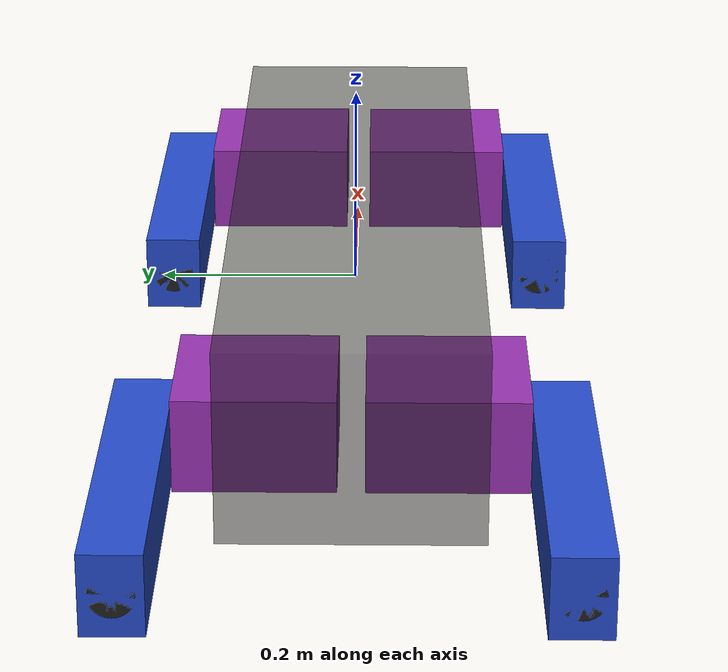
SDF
<sdf version='1.6'>
  <model name='ngr'>
    <link name='body'>
      <pose frame=''>0 0 0 0 -0 0</pose>
      <inertial>
        <pose frame=''>0 0 0 0 -0 0</pose>
        <mass>17.9</mass>
        <inertia>
          <ixx>0.0986</ixx>
          <ixy>0</ixy>
          <ixz>0</ixz>
          <iyy>0.8105</iyy>
          <iyz>0</iyz>
          <izz>0.8369</izz>
        </inertia>
      </inertial>
      <collision name='body_collision'>
        <pose frame=''>0 0 0 0 -0 0</pose>
        <geometry>
          <box>
            <size>0.83 0.25 0.19</size>
          </box>
        </geometry>
        <surface>
          <contact>
            <ode/>
          </contact>
          <friction>
            <ode/>
          </friction>
        </surface>
      </collision>
      <visual name='body_visual'>
        <pose frame=''>0 0 0 0 -0 0</pose>
        <geometry>
          <box>
            <size>0.83 0.25 0.19</size>
          </box>
        </geometry>
        <material>
          <script>
            <name>Gazebo/BlackTransparent</name>
            <uri>file://media/materials/scripts/gazebo.material</uri>
          </script>
        </material>
      </visual>
      <velocity_decay/>
      <velocity_decay/>
      <sensor name='imu_sensor' type='imu'>
        <always_on>1</always_on>
        <update_rate>500</update_rate>
        <visualize>1</visualize>
        <topic>__default_topic_</topic>
        <plugin name='imu_plugin' filename='libgazebo_ros_imu_sensor.so'>
          <topicName>imu</topicName>
          <bodyName>body</bodyName>
          <updateRateHZ>500.0</updateRateHZ>
          <gaussianNoise>0.0</gaussianNoise>
          <xyzOffset>0 0 0</xyzOffset>
          <rpyOffset>0 0 0</rpyOffset>
          <frameName>body</frameName>
          <initialOrientationAsReference>1</initialOrientationAsReference>
        </plugin>
        <pose frame=''>0 0 0 0 -0 0</pose>
      </sensor>
      <velocity_decay/>
      <sensor name='left_tof' type='depth'>
        <update_rate>15</update_rate>
        <camera name='__default__'>
          <horizontal_fov>1.08</horizontal_fov>
          <image>
            <width>171</width>
            <height>224</height>
            <format>R8G8B8</format>
          </image>
          <clip>
            <near>0.05</near>
            <far>2.5</far>
          </clip>
        </camera>
        <plugin name='left_tof_controller' filename='libgazebo_ros_openni_kinect.so'>
          <baseline>0.2</baseline>
          <alwaysOn>1</alwaysOn>
          <updateRate>0</updateRate>
          <cameraName>left_tof</cameraName>
          <imageTopicName>/left_tof/stream/1/color/image_rect_raw</imageTopicName>
          <cameraInfoTopicName>/left_tof/stream/1/color/camera_info</cameraInfoTopicName>
          <depthImageTopicName>/left_tof/stream/1/depth/image_rect_raw</depthImageTopicName>
          <depthImageCameraInfoTopicName>/left_tof/stream/1/depth/camera_info</depthImageCameraInfoTopicName>
          <pointCloudTopicName>/left_tof/stream/1/cloud</pointCloudTopicName>
          <frameName>left_tof_optical_link</frameName>
          <pointCloudCutoff>0.1</pointCloudCutoff>
          <pointCloudCutoffMax>2.5</pointCloudCutoffMax>
          <distortionK1>0.00000001</distortionK1>
          <distortionK2>0.00000001</distortionK2>
          <distortionK3>0.00000001</distortionK3>
          <distortionT1>0.00000001</distortionT1>
          <distortionT2>0.00000001</distortionT2>
          <CxPrime>0</CxPrime>
          <Cx>0</Cx>
          <Cy>0</Cy>
          <focalLength>0</focalLength>
          <hackBaseline>0</hackBaseline>
        </plugin>
        <pose frame=''>0.49993 0.033445 -0.00212 -0 0.5235 -0.349</pose>
      </sensor>
      <gravity>1</gravity>
      <velocity_decay/>
      <sensor name='front_depth' type='depth'>
        <update_rate>30</update_rate>
        <camera name='__default__'>
          <horizontal_fov>1.2</horizontal_fov>
          <image>
            <width>640</width>
            <height>480</height>
            <format>R8G8B8</format>
          </image>
          <clip>
            <near>0.05</near>
            <far>4</far>
          </clip>
        </camera>
        <plugin name='front_depth_controller' filename='libgazebo_ros_openni_kinect.so'>
          <baseline>0.2</baseline>
          <alwaysOn>1</alwaysOn>
          <updateRate>0</updateRate>
          <cameraName>d435i</cameraName>
          <imageTopicName>/d435i/color/image_raw</imageTopicName>
          <cameraInfoTopicName>/d435i/color/camera_info</cameraInfoTopicName>
          <depthImageTopicName>/d435i/depth/image_rect_raw</depthImageTopicName>
          <depthImageCameraInfoTopicName>/d435i/depth/camera_info</depthImageCameraInfoTopicName>
          <pointCloudTopicName>/d435i/depth/points</pointCloudTopicName>
          <frameName>d435i_optical_link</frameName>
          <pointCloudCutoff>0.5</pointCloudCutoff>
          <pointCloudCutoffMax>3.0</pointCloudCutoffMax>
          <distortionK1>0.00000001</distortionK1>
          <distortionK2>0.00000001</distortionK2>
          <distortionK3>0.00000001</distortionK3>
          <distortionT1>0.00000001</distortionT1>
          <distortionT2>0.00000001</distortionT2>
          <CxPrime>0</CxPrime>
          <Cx>319.06939697265625</Cx>
          <Cy>241.25682067871094</Cy>
          <focalLength>0</focalLength>
          <hackBaseline>0</hackBaseline>
        </plugin>
        <pose frame=''>0.454 0 0.0456 0 -0 0</pose>
      </sensor>
      <gravity>1</gravity>
      <velocity_decay/>
      <sensor name='right_tof' type='depth'>
        <update_rate>15</update_rate>
        <camera name='__default__'>
          <horizontal_fov>1.08</horizontal_fov>
          <image>
            <width>171</width>
            <height>224</height>
            <format>R8G8B8</format>
          </image>
          <clip>
            <near>0.05</near>
            <far>2.5</far>
          </clip>
        </camera>
        <plugin name='right_tof_controller' filename='libgazebo_ros_openni_kinect.so'>
          <baseline>0.2</baseline>
          <alwaysOn>1</alwaysOn>
          <updateRate>0</updateRate>
          <cameraName>right_tof</cameraName>
          <imageTopicName>/right_tof/stream/1/color/image_rect_raw</imageTopicName>
          <cameraInfoTopicName>/right_tof/stream/1/color/camera_info</cameraInfoTopicName>
          <depthImageTopicName>/right_tof/stream/1/depth/image_rect_raw</depthImageTopicName>
          <depthImageCameraInfoTopicName>/right_tof/depth/camera_info</depthImageCameraInfoTopicName>
          <pointCloudTopicName>/right_tof/stream/1/cloud</pointCloudTopicName>
          <frameName>right_tof_link</frameName>
          <pointCloudCutoff>0.1</pointCloudCutoff>
          <pointCloudCutoffMax>2.5</pointCloudCutoffMax>
          <distortionK1>0.00000001</distortionK1>
          <distortionK2>0.00000001</distortionK2>
          <distortionK3>0.00000001</distortionK3>
          <distortionT1>0.00000001</distortionT1>
          <distortionT2>0.00000001</distortionT2>
          <CxPrime>0</CxPrime>
          <Cx>0</Cx>
          <Cy>0</Cy>
          <focalLength>0</focalLength>
          <hackBaseline>0</hackBaseline>
        </plugin>
        <pose frame=''>0.49993 -0.033445 -0.00212 0 0.5235 0.349</pose>
      </sensor>
    </link>
    <link name='hip2'>
      <pose frame=''>0.34385 -0.092865 0 0 -0 0</pose>
      <inertial>
        <pose frame=''>0 0 0 0 -0 0</pose>
        <mass>1.975</mass>
        <inertia>
          <ixx>0.00891458</ixx>
          <ixy>0</ixy>
          <ixz>0</ixz>
          <iyy>0.0100573</iyy>
          <iyz>0</iyz>
          <izz>0.015337</izz>
        </inertia>
      </inertial>
      <collision name='hip2_collision'>
        <pose frame=''>-0.01 0.005 0 1.5708 -0 0</pose>
        <geometry>
          <box>
            <size>0.15 0.09 0.15</size>
          </box>
        </geometry>
        <surface>
          <contact>
            <ode/>
          </contact>
          <friction>
            <ode/>
          </friction>
        </surface>
      </collision>
      <visual name='hip2_visual'>
        <pose frame=''>-0.01 0.005 0 1.5708 -0 0</pose>
        <geometry>
          <box>
            <size>0.15 0.09 0.15</size>
          </box>
        </geometry>
        <material>
          <script>
            <name>Gazebo/Purple</name>
            <uri>file://media/materials/scripts/gazebo.material</uri>
          </script>
        </material>
      </visual>
      <gravity>1</gravity>
      <velocity_decay/>
    </link>
    <joint name='10' type='revolute'>
      <child>hip2</child>
      <parent>body</parent>
      <axis>
        <xyz>1 0 0</xyz>
        <limit>
          <lower>-0.43</lower>
          <upper>0.43</upper>
          <effort>375</effort>
          <velocity>8.6</velocity>
        </limit>
        <dynamics>
          <damping>0</damping>
          <friction>0</friction>
          <spring_reference>0</spring_reference>
          <spring_stiffness>0</spring_stiffness>
        </dynamics>
        <use_parent_model_frame>1</use_parent_model_frame>
      </axis>
    </joint>
    <link name='upper2'>
      <pose frame=''>0.34385 -0.190365 0 0 -0 0</pose>
      <inertial>
        <pose frame=''>0 0 0 0 -0 0</pose>
        <mass>2.525</mass>
        <inertia>
          <ixx>0.0003125</ixx>
          <ixy>0</ixy>
          <ixz>0</ixz>
          <iyy>0.0040625</iyy>
          <iyz>0</iyz>
          <izz>0.0040625</izz>
        </inertia>
      </inertial>
      <collision name='upper2_collision'>
        <pose frame=''>-0.17 -0 0 0 -0 0</pose>
        <geometry>
          <box>
            <size>0.34 0.055 0.075</size>
          </box>
        </geometry>
        <surface>
          <contact>
            <ode/>
          </contact>
          <friction>
            <ode/>
          </friction>
        </surface>
      </collision>
      <visual name='upper2_visual'>
        <pose frame=''>-0.17 -0 0 0 -0 0</pose>
        <geometry>
          <box>
            <size>0.34 0.055 0.075</size>
          </box>
        </geometry>
        <material>
          <script>
            <name>Gazebo/Blue</name>
            <uri>file://media/materials/scripts/gazebo.material</uri>
          </script>
        </material>
      </visual>
      <gravity>1</gravity>
      <velocity_decay/>
    </link>
    <joint name='4' type='revolute'>
      <child>upper2</child>
      <parent>hip2</parent>
      <axis>
        <xyz>0 -1 0</xyz>
        <limit>
          <lower>-6.28319</lower>
          <upper>6.28319</upper>
          <effort>87.5</effort>
          <velocity>30</velocity>
        </limit>
        <dynamics>
          <damping>0</damping>
          <friction>0</friction>
          <spring_reference>0</spring_reference>
          <spring_stiffness>0</spring_stiffness>
        </dynamics>
        <use_parent_model_frame>1</use_parent_model_frame>
      </axis>
    </joint>
    <link name='lower2'>
      <pose frame=''>0.00385 -0.190365 0 0 -0 0</pose>
      <inertial>
        <pose frame=''>0.097343 0 0 0 -0 0</pose>
        <mass>0.525</mass>
        <inertia>
          <ixx>0.00133575</ixx>
          <ixy>0</ixy>
          <ixz>0</ixz>
          <iyy>0.0137725</iyy>
          <iyz>0</iyz>
          <izz>0.0125618</izz>
        </inertia>
      </inertial>
      <collision name='lower2_collision'>
        <pose frame=''>0.17035 0 0 3.14159 1.57079 3.14159</pose>
        <geometry>
          <cylinder>
            <length>0.3407</length>
            <radius>0.02</radius>
          </cylinder>
        </geometry>
        <surface>
          <contact>
            <ode/>
          </contact>
          <friction>
            <ode/>
          </friction>
        </surface>
      </collision>
      <collision name='lower2_fixed_joint_lump__toe2_collision_1'>
        <pose frame=''>0.3407 0 0 0 -0 0</pose>
        <geometry>
          <sphere>
            <radius>0.0325</radius>
          </sphere>
        </geometry>
        <surface>
          <bounce>
            <restitution_coefficient>0</restitution_coefficient>
            <threshold>1e+06</threshold>
          </bounce>
          <friction>
            <torsional>
              <coefficient>0.3</coefficient>
            </torsional>
            <ode>
              <mu>20</mu>
              <mu2>10</mu2>
            </ode>
            <bullet>
              <rolling_friction>0.3</rolling_friction>
              <friction2>10</friction2>
            </bullet>
          </friction>
          <contact>
            <bullet>
              <kp>30000</kp>
              <kd>1000</kd>
              <split_impulse>1</split_impulse>
              <split_impulse_penetration_threshold>-0.01</split_impulse_penetration_threshold>
            </bullet>
            <ode>
              <kp>30000</kp>
              <kd>1000</kd>
            </ode>
          </contact>
        </surface>
      </collision>
      <visual name='lower2_visual'>
        <pose frame=''>0.17035 0 0 3.14159 1.57079 3.14159</pose>
        <geometry>
          <cylinder>
            <length>0.3407</length>
            <radius>0.02</radius>
          </cylinder>
        </geometry>
        <material>
          <script>
            <name>Gazebo/Black</name>
            <uri>file://media/materials/scripts/gazebo.material</uri>
          </script>
        </material>
      </visual>
      <visual name='lower2_fixed_joint_lump__toe2_visual_1'>
        <pose frame=''>0.3407 0 0 0 -0 0</pose>
        <geometry>
          <sphere>
            <radius>0.0325</radius>
          </sphere>
        </geometry>
        <material>
          <script>
            <name>Gazebo/DarkGray</name>
            <uri>file://media/materials/scripts/gazebo.material</uri>
          </script>
        </material>
      </visual>
      <velocity_decay/>
      <gravity>1</gravity>
      <velocity_decay/>
    </link>
    <joint name='5' type='revolute'>
      <child>lower2</child>
      <parent>upper2</parent>
      <axis>
        <xyz>0 1 0</xyz>
        <limit>
          <lower>0</lower>
          <upper>3.14159</upper>
          <effort>87.5</effort>
          <velocity>30</velocity>
        </limit>
        <dynamics>
          <damping>0</damping>
          <friction>0</friction>
          <spring_reference>0</spring_reference>
          <spring_stiffness>0</spring_stiffness>
        </dynamics>
        <use_parent_model_frame>1</use_parent_model_frame>
      </axis>
    </joint>
    <link name='hip3'>
      <pose frame=''>-0.34385 -0.092865 0 0 -0 0</pose>
      <inertial>
        <pose frame=''>0 0 0 0 -0 0</pose>
        <mass>1.975</mass>
        <inertia>
          <ixx>0.00891458</ixx>
          <ixy>0</ixy>
          <ixz>0</ixz>
          <iyy>0.0100573</iyy>
          <iyz>0</iyz>
          <izz>0.015337</izz>
        </inertia>
      </inertial>
      <collision name='hip3_collision'>
        <pose frame=''>0.01 0.005 0 1.5708 -0 0</pose>
        <geometry>
          <box>
            <size>0.15 0.09 0.15</size>
          </box>
        </geometry>
        <surface>
          <contact>
            <ode/>
          </contact>
          <friction>
            <ode/>
          </friction>
        </surface>
      </collision>
      <visual name='hip3_visual'>
        <pose frame=''>0.01 0.005 0 1.5708 -0 0</pose>
        <geometry>
          <box>
            <size>0.15 0.09 0.15</size>
          </box>
        </geometry>
        <material>
          <script>
            <name>Gazebo/Purple</name>
            <uri>file://media/materials/scripts/gazebo.material</uri>
          </script>
        </material>
      </visual>
      <gravity>1</gravity>
      <velocity_decay/>
    </link>
    <joint name='11' type='revolute'>
      <child>hip3</child>
      <parent>body</parent>
      <axis>
        <xyz>1 0 0</xyz>
        <limit>
          <lower>-0.43</lower>
          <upper>0.43</upper>
          <effort>375</effort>
          <velocity>8.6</velocity>
        </limit>
        <dynamics>
          <damping>0</damping>
          <friction>0</friction>
          <spring_reference>0</spring_reference>
          <spring_stiffness>0</spring_stiffness>
        </dynamics>
        <use_parent_model_frame>1</use_parent_model_frame>
      </axis>
    </joint>
    <link name='upper3'>
      <pose frame=''>-0.34385 -0.190365 0 0 -0 0</pose>
      <inertial>
        <pose frame=''>0 0 0 0 -0 0</pose>
        <mass>2.525</mass>
        <inertia>
          <ixx>0.0003125</ixx>
          <ixy>0</ixy>
          <ixz>0</ixz>
          <iyy>0.0040625</iyy>
          <iyz>0</iyz>
          <izz>0.0040625</izz>
        </inertia>
      </inertial>
      <collision name='upper3_collision'>
        <pose frame=''>-0.17 -0 0 0 -0 0</pose>
        <geometry>
          <box>
            <size>0.34 0.055 0.075</size>
          </box>
        </geometry>
        <surface>
          <contact>
            <ode/>
          </contact>
          <friction>
            <ode/>
          </friction>
        </surface>
      </collision>
      <visual name='upper3_visual'>
        <pose frame=''>-0.17 -0 0 0 -0 0</pose>
        <geometry>
          <box>
            <size>0.34 0.055 0.075</size>
          </box>
        </geometry>
        <material>
          <script>
            <name>Gazebo/Blue</name>
            <uri>file://media/materials/scripts/gazebo.material</uri>
          </script>
        </material>
      </visual>
      <gravity>1</gravity>
      <velocity_decay/>
    </link>
    <joint name='6' type='revolute'>
      <child>upper3</child>
      <parent>hip3</parent>
      <axis>
        <xyz>0 -1 0</xyz>
        <limit>
          <lower>-6.28319</lower>
          <upper>6.28319</upper>
          <effort>87.5</effort>
          <velocity>30</velocity>
        </limit>
        <dynamics>
          <damping>0</damping>
          <friction>0</friction>
          <spring_reference>0</spring_reference>
          <spring_stiffness>0</spring_stiffness>
        </dynamics>
        <use_parent_model_frame>1</use_parent_model_frame>
      </axis>
    </joint>
    <link name='lower3'>
      <pose frame=''>-0.68385 -0.190365 0 0 -0 0</pose>
      <inertial>
        <pose frame=''>0.097343 0 0 0 -0 0</pose>
        <mass>0.525</mass>
        <inertia>
          <ixx>0.00133575</ixx>
          <ixy>0</ixy>
          <ixz>0</ixz>
          <iyy>0.0137725</iyy>
          <iyz>0</iyz>
          <izz>0.0125618</izz>
        </inertia>
      </inertial>
      <collision name='lower3_collision'>
        <pose frame=''>0.17035 0 0 3.14159 1.57079 3.14159</pose>
        <geometry>
          <cylinder>
            <length>0.3407</length>
            <radius>0.02</radius>
          </cylinder>
        </geometry>
        <surface>
          <contact>
            <ode/>
          </contact>
          <friction>
            <ode/>
          </friction>
        </surface>
      </collision>
      <collision name='lower3_fixed_joint_lump__toe3_collision_1'>
        <pose frame=''>0.3407 0 0 0 -0 0</pose>
        <geometry>
          <sphere>
            <radius>0.0325</radius>
          </sphere>
        </geometry>
        <surface>
          <bounce>
            <restitution_coefficient>0</restitution_coefficient>
            <threshold>1e+06</threshold>
          </bounce>
          <friction>
            <torsional>
              <coefficient>0.3</coefficient>
            </torsional>
            <ode>
              <mu>20</mu>
              <mu2>10</mu2>
            </ode>
            <bullet>
              <rolling_friction>0.3</rolling_friction>
              <friction2>10</friction2>
            </bullet>
          </friction>
          <contact>
            <bullet>
              <kp>30000</kp>
              <kd>1000</kd>
              <split_impulse>1</split_impulse>
              <split_impulse_penetration_threshold>-0.01</split_impulse_penetration_threshold>
            </bullet>
            <ode>
              <kp>30000</kp>
              <kd>1000</kd>
            </ode>
          </contact>
        </surface>
      </collision>
      <visual name='lower3_visual'>
        <pose frame=''>0.17035 0 0 3.14159 1.57079 3.14159</pose>
        <geometry>
          <cylinder>
            <length>0.3407</length>
            <radius>0.02</radius>
          </cylinder>
        </geometry>
        <material>
          <script>
            <name>Gazebo/Black</name>
            <uri>file://media/materials/scripts/gazebo.material</uri>
          </script>
        </material>
      </visual>
      <visual name='lower3_fixed_joint_lump__toe3_visual_1'>
        <pose frame=''>0.3407 0 0 0 -0 0</pose>
        <geometry>
          <sphere>
            <radius>0.0325</radius>
          </sphere>
        </geometry>
        <material>
          <script>
            <name>Gazebo/DarkGray</name>
            <uri>file://media/materials/scripts/gazebo.material</uri>
          </script>
        </material>
      </visual>
      <velocity_decay/>
      <gravity>1</gravity>
      <velocity_decay/>
    </link>
    <joint name='7' type='revolute'>
      <child>lower3</child>
      <parent>upper3</parent>
      <axis>
        <xyz>0 1 0</xyz>
        <limit>
          <lower>0</lower>
          <upper>3.14159</upper>
          <effort>87.5</effort>
          <velocity>30</velocity>
        </limit>
        <dynamics>
          <damping>0</damping>
          <friction>0</friction>
          <spring_reference>0</spring_reference>
          <spring_stiffness>0</spring_stiffness>
        </dynamics>
        <use_parent_model_frame>1</use_parent_model_frame>
      </axis>
    </joint>
    <link name='hip0'>
      <pose frame=''>0.34385 0.092865 0 0 -0 0</pose>
      <inertial>
        <pose frame=''>0 0 0 0 -0 0</pose>
        <mass>1.975</mass>
        <inertia>
          <ixx>0.00891458</ixx>
          <ixy>0</ixy>
          <ixz>0</ixz>
          <iyy>0.0100573</iyy>
          <iyz>0</iyz>
          <izz>0.015337</izz>
        </inertia>
      </inertial>
      <collision name='hip0_collision'>
        <pose frame=''>-0.01 -0.005 0 1.5708 -0 0</pose>
        <geometry>
          <box>
            <size>0.15 0.09 0.15</size>
          </box>
        </geometry>
        <surface>
          <contact>
            <ode/>
          </contact>
          <friction>
            <ode/>
          </friction>
        </surface>
      </collision>
      <visual name='hip0_visual'>
        <pose frame=''>-0.01 -0.005 0 1.5708 -0 0</pose>
        <geometry>
          <box>
            <size>0.15 0.09 0.15</size>
          </box>
        </geometry>
        <material>
          <script>
            <name>Gazebo/Purple</name>
            <uri>file://media/materials/scripts/gazebo.material</uri>
          </script>
        </material>
      </visual>
      <gravity>1</gravity>
      <velocity_decay/>
    </link>
    <joint name='8' type='revolute'>
      <child>hip0</child>
      <parent>body</parent>
      <axis>
        <xyz>1 0 0</xyz>
        <limit>
          <lower>-0.43</lower>
          <upper>0.43</upper>
          <effort>375</effort>
          <velocity>8.6</velocity>
        </limit>
        <dynamics>
          <damping>0</damping>
          <friction>0</friction>
          <spring_reference>0</spring_reference>
          <spring_stiffness>0</spring_stiffness>
        </dynamics>
        <use_parent_model_frame>1</use_parent_model_frame>
      </axis>
    </joint>
    <link name='upper0'>
      <pose frame=''>0.34385 0.190365 0 0 -0 0</pose>
      <inertial>
        <pose frame=''>0 0 0 0 -0 0</pose>
        <mass>2.525</mass>
        <inertia>
          <ixx>0.0003125</ixx>
          <ixy>0</ixy>
          <ixz>0</ixz>
          <iyy>0.0040625</iyy>
          <iyz>0</iyz>
          <izz>0.0040625</izz>
        </inertia>
      </inertial>
      <collision name='upper0_collision'>
        <pose frame=''>-0.17 0 0 0 -0 0</pose>
        <geometry>
          <box>
            <size>0.34 0.055 0.075</size>
          </box>
        </geometry>
        <surface>
          <contact>
            <ode/>
          </contact>
          <friction>
            <ode/>
          </friction>
        </surface>
      </collision>
      <visual name='upper0_visual'>
        <pose frame=''>-0.17 0 0 0 -0 0</pose>
        <geometry>
          <box>
            <size>0.34 0.055 0.075</size>
          </box>
        </geometry>
        <material>
          <script>
            <name>Gazebo/Blue</name>
            <uri>file://media/materials/scripts/gazebo.material</uri>
          </script>
        </material>
      </visual>
      <gravity>1</gravity>
      <velocity_decay/>
    </link>
    <joint name='0' type='revolute'>
      <child>upper0</child>
      <parent>hip0</parent>
      <axis>
        <xyz>0 -1 0</xyz>
        <limit>
          <lower>-6.28319</lower>
          <upper>6.28319</upper>
          <effort>87.5</effort>
          <velocity>30</velocity>
        </limit>
        <dynamics>
          <damping>0</damping>
          <friction>0</friction>
          <spring_reference>0</spring_reference>
          <spring_stiffness>0</spring_stiffness>
        </dynamics>
        <use_parent_model_frame>1</use_parent_model_frame>
      </axis>
    </joint>
    <link name='lower0'>
      <pose frame=''>0.00385 0.190365 0 0 -0 0</pose>
      <inertial>
        <pose frame=''>0.097343 0 0 0 -0 0</pose>
        <mass>0.525</mass>
        <inertia>
          <ixx>0.00133575</ixx>
          <ixy>0</ixy>
          <ixz>0</ixz>
          <iyy>0.0137725</iyy>
          <iyz>0</iyz>
          <izz>0.0125618</izz>
        </inertia>
      </inertial>
      <collision name='lower0_collision'>
        <pose frame=''>0.17035 0 0 3.14159 1.57079 3.14159</pose>
        <geometry>
          <cylinder>
            <length>0.3407</length>
            <radius>0.02</radius>
          </cylinder>
        </geometry>
        <surface>
          <contact>
            <ode/>
          </contact>
          <friction>
            <ode/>
          </friction>
        </surface>
      </collision>
      <collision name='lower0_fixed_joint_lump__toe0_collision_1'>
        <pose frame=''>0.3407 0 0 0 -0 0</pose>
        <geometry>
          <sphere>
            <radius>0.0325</radius>
          </sphere>
        </geometry>
        <surface>
          <bounce>
            <restitution_coefficient>0</restitution_coefficient>
            <threshold>1e+06</threshold>
          </bounce>
          <friction>
            <torsional>
              <coefficient>0.3</coefficient>
            </torsional>
            <ode>
              <mu>20</mu>
              <mu2>10</mu2>
            </ode>
            <bullet>
              <rolling_friction>0.3</rolling_friction>
              <friction2>10</friction2>
            </bullet>
          </friction>
          <contact>
            <bullet>
              <kp>30000</kp>
              <kd>1000</kd>
              <split_impulse>1</split_impulse>
              <split_impulse_penetration_threshold>-0.01</split_impulse_penetration_threshold>
            </bullet>
            <ode>
              <kp>30000</kp>
              <kd>1000</kd>
            </ode>
          </contact>
        </surface>
      </collision>
      <visual name='lower0_visual'>
        <pose frame=''>0.17035 0 0 3.14159 1.57079 3.14159</pose>
        <geometry>
          <cylinder>
            <length>0.3407</length>
            <radius>0.02</radius>
          </cylinder>
        </geometry>
        <material>
          <script>
            <name>Gazebo/Black</name>
            <uri>file://media/materials/scripts/gazebo.material</uri>
          </script>
        </material>
      </visual>
      <visual name='lower0_fixed_joint_lump__toe0_visual_1'>
        <pose frame=''>0.3407 0 0 0 -0 0</pose>
        <geometry>
          <sphere>
            <radius>0.0325</radius>
          </sphere>
        </geometry>
        <material>
          <script>
            <name>Gazebo/DarkGray</name>
            <uri>file://media/materials/scripts/gazebo.material</uri>
          </script>
        </material>
      </visual>
      <velocity_decay/>
      <gravity>1</gravity>
      <velocity_decay/>
    </link>
    <joint name='1' type='revolute'>
      <child>lower0</child>
      <parent>upper0</parent>
      <axis>
        <xyz>0 1 0</xyz>
        <limit>
          <lower>0</lower>
          <upper>3.14159</upper>
          <effort>87.5</effort>
          <velocity>30</velocity>
        </limit>
        <dynamics>
          <damping>0</damping>
          <friction>0</friction>
          <spring_reference>0</spring_reference>
          <spring_stiffness>0</spring_stiffness>
        </dynamics>
        <use_parent_model_frame>1</use_parent_model_frame>
      </axis>
    </joint>
    <link name='hip1'>
      <pose frame=''>-0.34385 0.092865 0 0 -0 0</pose>
      <inertial>
        <pose frame=''>0 0 0 0 -0 0</pose>
        <mass>1.975</mass>
        <inertia>
          <ixx>0.00891458</ixx>
          <ixy>0</ixy>
          <ixz>0</ixz>
          <iyy>0.0100573</iyy>
          <iyz>0</iyz>
          <izz>0.015337</izz>
        </inertia>
      </inertial>
      <collision name='hip1_collision'>
        <pose frame=''>0.01 -0.005 0 1.5708 -0 0</pose>
        <geometry>
          <box>
            <size>0.15 0.09 0.15</size>
          </box>
        </geometry>
        <surface>
          <contact>
            <ode/>
          </contact>
          <friction>
            <ode/>
          </friction>
        </surface>
      </collision>
      <visual name='hip1_visual'>
        <pose frame=''>0.01 -0.005 0 1.5708 -0 0</pose>
        <geometry>
          <box>
            <size>0.15 0.09 0.15</size>
          </box>
        </geometry>
        <material>
          <script>
            <name>Gazebo/Purple</name>
            <uri>file://media/materials/scripts/gazebo.material</uri>
          </script>
        </material>
      </visual>
      <gravity>1</gravity>
      <velocity_decay/>
    </link>
    <joint name='9' type='revolute'>
      <child>hip1</child>
      <parent>body</parent>
      <axis>
        <xyz>1 0 0</xyz>
        <limit>
          <lower>-0.43</lower>
          <upper>0.43</upper>
          <effort>375</effort>
          <velocity>8.6</velocity>
        </limit>
        <dynamics>
          <damping>0</damping>
          <friction>0</friction>
          <spring_reference>0</spring_reference>
          <spring_stiffness>0</spring_stiffness>
        </dynamics>
        <use_parent_model_frame>1</use_parent_model_frame>
      </axis>
    </joint>
    <link name='upper1'>
      <pose frame=''>-0.34385 0.190365 0 0 -0 0</pose>
      <inertial>
        <pose frame=''>0 0 0 0 -0 0</pose>
        <mass>2.525</mass>
        <inertia>
          <ixx>0.0003125</ixx>
          <ixy>0</ixy>
          <ixz>0</ixz>
          <iyy>0.0040625</iyy>
          <iyz>0</iyz>
          <izz>0.0040625</izz>
        </inertia>
      </inertial>
      <collision name='upper1_collision'>
        <pose frame=''>-0.17 0 0 0 -0 0</pose>
        <geometry>
          <box>
            <size>0.34 0.055 0.075</size>
          </box>
        </geometry>
        <surface>
          <contact>
            <ode/>
          </contact>
          <friction>
            <ode/>
          </friction>
        </surface>
      </collision>
      <visual name='upper1_visual'>
        <pose frame=''>-0.17 0 0 0 -0 0</pose>
        <geometry>
          <box>
            <size>0.34 0.055 0.075</size>
          </box>
        </geometry>
        <material>
          <script>
            <name>Gazebo/Blue</name>
            <uri>file://media/materials/scripts/gazebo.material</uri>
          </script>
        </material>
      </visual>
      <gravity>1</gravity>
      <velocity_decay/>
    </link>
    <joint name='2' type='revolute'>
      <child>upper1</child>
      <parent>hip1</parent>
      <axis>
        <xyz>0 -1 0</xyz>
        <limit>
          <lower>-6.28319</lower>
          <upper>6.28319</upper>
          <effort>87.5</effort>
          <velocity>30</velocity>
        </limit>
        <dynamics>
          <damping>0</damping>
          <friction>0</friction>
          <spring_reference>0</spring_reference>
          <spring_stiffness>0</spring_stiffness>
        </dynamics>
        <use_parent_model_frame>1</use_parent_model_frame>
      </axis>
    </joint>
    <link name='lower1'>
      <pose frame=''>-0.68385 0.190365 0 0 -0 0</pose>
      <inertial>
        <pose frame=''>0.097343 0 0 0 -0 0</pose>
        <mass>0.525</mass>
        <inertia>
          <ixx>0.00133575</ixx>
          <ixy>0</ixy>
          <ixz>0</ixz>
          <iyy>0.0137725</iyy>
          <iyz>0</iyz>
          <izz>0.0125618</izz>
        </inertia>
      </inertial>
      <collision name='lower1_collision'>
        <pose frame=''>0.17035 0 0 3.14159 1.57079 3.14159</pose>
        <geometry>
          <cylinder>
            <length>0.3407</length>
            <radius>0.02</radius>
          </cylinder>
        </geometry>
        <surface>
          <contact>
            <ode/>
          </contact>
          <friction>
            <ode/>
          </friction>
        </surface>
      </collision>
      <collision name='lower1_fixed_joint_lump__toe1_collision_1'>
        <pose frame=''>0.3407 0 0 0 -0 0</pose>
        <geometry>
          <sphere>
            <radius>0.0325</radius>
          </sphere>
        </geometry>
        <surface>
          <bounce>
            <restitution_coefficient>0</restitution_coefficient>
            <threshold>1e+06</threshold>
          </bounce>
          <friction>
            <torsional>
              <coefficient>0.3</coefficient>
            </torsional>
            <ode>
              <mu>20</mu>
              <mu2>10</mu2>
            </ode>
            <bullet>
              <rolling_friction>0.3</rolling_friction>
              <friction2>10</friction2>
            </bullet>
          </friction>
          <contact>
            <bullet>
              <kp>30000</kp>
              <kd>1000</kd>
              <split_impulse>1</split_impulse>
              <split_impulse_penetration_threshold>-0.01</split_impulse_penetration_threshold>
            </bullet>
            <ode>
              <kp>30000</kp>
              <kd>1000</kd>
            </ode>
          </contact>
        </surface>
      </collision>
      <visual name='lower1_visual'>
        <pose frame=''>0.17035 0 0 3.14159 1.57079 3.14159</pose>
        <geometry>
          <cylinder>
            <length>0.3407</length>
            <radius>0.02</radius>
          </cylinder>
        </geometry>
        <material>
          <script>
            <name>Gazebo/Black</name>
            <uri>file://media/materials/scripts/gazebo.material</uri>
          </script>
        </material>
      </visual>
      <visual name='lower1_fixed_joint_lump__toe1_visual_1'>
        <pose frame=''>0.3407 0 0 0 -0 0</pose>
        <geometry>
          <sphere>
            <radius>0.0325</radius>
          </sphere>
        </geometry>
        <material>
          <script>
            <name>Gazebo/DarkGray</name>
            <uri>file://media/materials/scripts/gazebo.material</uri>
          </script>
        </material>
      </visual>
      <velocity_decay/>
      <gravity>1</gravity>
      <velocity_decay/>
    </link>
    <joint name='3' type='revolute'>
      <child>lower1</child>
      <parent>upper1</parent>
      <axis>
        <xyz>0 1 0</xyz>
        <limit>
          <lower>0</lower>
          <upper>3.14159</upper>
          <effort>87.5</effort>
          <velocity>30</velocity>
        </limit>
        <dynamics>
          <damping>0</damping>
          <friction>0</friction>
          <spring_reference>0</spring_reference>
          <spring_stiffness>0</spring_stiffness>
        </dynamics>
        <use_parent_model_frame>1</use_parent_model_frame>
      </axis>
    </joint>
    <plugin name='imu_plugin' filename='libgazebo_ros_imu.so'>
      <alwaysOn>1</alwaysOn>
      <bodyName>body</bodyName>
      <topicName>imu_other</topicName>
      <serviceName>imu_service</serviceName>
      <gaussianNoise>0.0</gaussianNoise>
      <updateRate>500.0</updateRate>
    </plugin>
    <static>0</static>
    <plugin name='gazebo_ros_control' filename='libgazebo_ros_control.so'>
      <robotNamespace>/vision60</robotNamespace>
    </plugin>
  </model>
</sdf>
